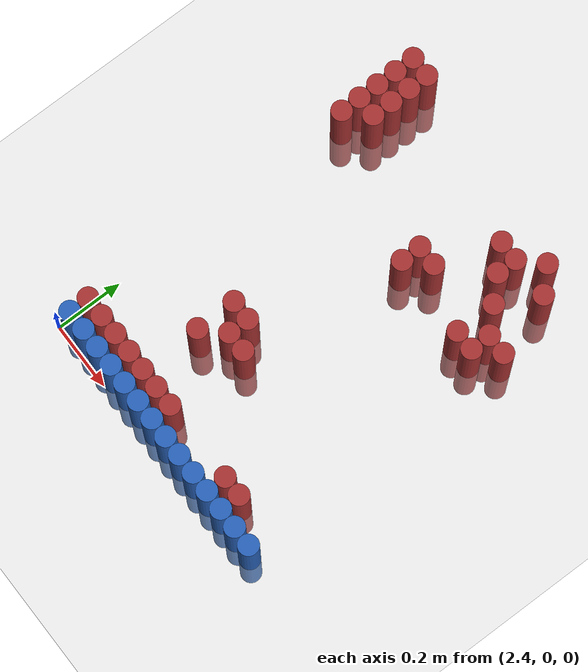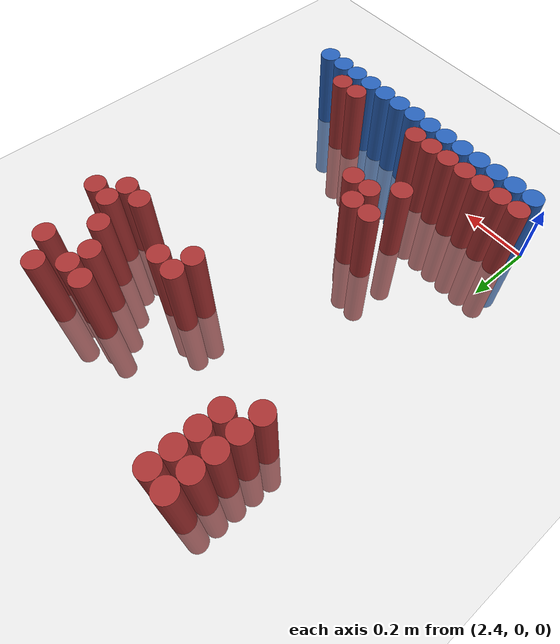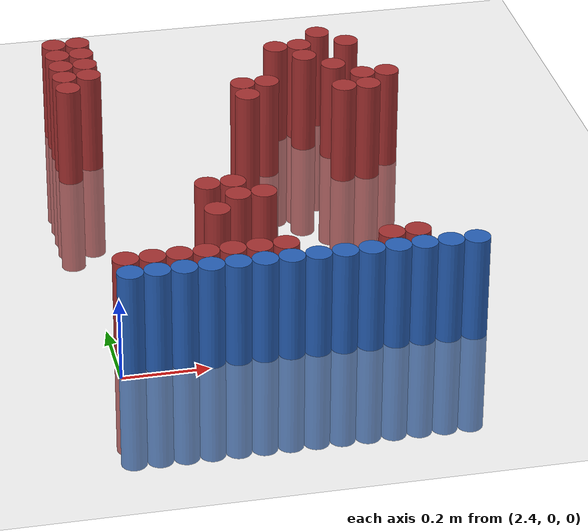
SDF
<sdf version="1.6">
 <world name="default">
  <model name="ground_plane">
   <static>1</static>
   <link name="link">
    <collision name="collision">
     <geometry><plane><normal>0 0 1</normal><size>100 100</size></plane></geometry>
     <surface><friction><ode><mu>100</mu><mu2>50</mu2></ode></friction></surface>
    </collision>
    <visual name="visual">
     <cast_shadows>0</cast_shadows>
     <geometry><plane><normal>0 0 1</normal><size>100 100</size></plane></geometry>
     <material>
      <script><uri>file://media/materials/scripts/gazebo.material</uri><name>Gazebo/Grey</name></script>
     </material>
    </visual>
   </link>
  </model>
  <model name="unit_cylinder_216">
   <static>1</static>
   <pose>2.430000 1.170000 0.000000 0.000000 0.000000 0.000000</pose>
   <link name="link">
    <inertial>
     <mass>1</mass>
     <inertia><ixx>0.145833</ixx><ixy>0</ixy><ixz>0</ixz><iyy>0.145833</iyy><iyz>0</iyz><izz>0.125</izz></inertia>
    </inertial>
    <collision name="collision">
     <geometry><cylinder><radius>0.030000</radius><length>0.5</length></cylinder></geometry>
    </collision>
    <visual name="visual">
     <geometry><cylinder><radius>0.030000</radius><length>0.5</length></cylinder></geometry>
     <material>
      <ambient>0.648000 0.192000 0.192000 1</ambient>
      <diffuse>0.648000 0.192000 0.192000 1</diffuse>
     </material>
     <material>
      <script><name>Gazebo/Grey</name><uri>file://media/materials/scripts/gazebo.material</uri></script>
     </material>
    </visual>
   </link>
  </model>
  <model name="unit_cylinder_217">
   <static>1</static>
   <pose>2.490000 1.170000 0.000000 0.000000 0.000000 0.000000</pose>
   <link name="link">
    <inertial>
     <mass>1</mass>
     <inertia><ixx>0.145833</ixx><ixy>0</ixy><ixz>0</ixz><iyy>0.145833</iyy><iyz>0</iyz><izz>0.125</izz></inertia>
    </inertial>
    <collision name="collision">
     <geometry><cylinder><radius>0.030000</radius><length>0.5</length></cylinder></geometry>
    </collision>
    <visual name="visual">
     <geometry><cylinder><radius>0.030000</radius><length>0.5</length></cylinder></geometry>
     <material>
      <ambient>0.648000 0.192000 0.192000 1</ambient>
      <diffuse>0.648000 0.192000 0.192000 1</diffuse>
     </material>
     <material>
      <script><name>Gazebo/Grey</name><uri>file://media/materials/scripts/gazebo.material</uri></script>
     </material>
    </visual>
   </link>
  </model>
  <model name="unit_cylinder_226">
   <static>1</static>
   <pose>2.430000 1.110000 0.000000 0.000000 0.000000 0.000000</pose>
   <link name="link">
    <inertial>
     <mass>1</mass>
     <inertia><ixx>0.145833</ixx><ixy>0</ixy><ixz>0</ixz><iyy>0.145833</iyy><iyz>0</iyz><izz>0.125</izz></inertia>
    </inertial>
    <collision name="collision">
     <geometry><cylinder><radius>0.030000</radius><length>0.5</length></cylinder></geometry>
    </collision>
    <visual name="visual">
     <geometry><cylinder><radius>0.030000</radius><length>0.5</length></cylinder></geometry>
     <material>
      <ambient>0.648000 0.192000 0.192000 1</ambient>
      <diffuse>0.648000 0.192000 0.192000 1</diffuse>
     </material>
     <material>
      <script><name>Gazebo/Grey</name><uri>file://media/materials/scripts/gazebo.material</uri></script>
     </material>
    </visual>
   </link>
  </model>
  <model name="unit_cylinder_227">
   <static>1</static>
   <pose>2.490000 1.110000 0.000000 0.000000 0.000000 0.000000</pose>
   <link name="link">
    <inertial>
     <mass>1</mass>
     <inertia><ixx>0.145833</ixx><ixy>0</ixy><ixz>0</ixz><iyy>0.145833</iyy><iyz>0</iyz><izz>0.125</izz></inertia>
    </inertial>
    <collision name="collision">
     <geometry><cylinder><radius>0.030000</radius><length>0.5</length></cylinder></geometry>
    </collision>
    <visual name="visual">
     <geometry><cylinder><radius>0.030000</radius><length>0.5</length></cylinder></geometry>
     <material>
      <ambient>0.648000 0.192000 0.192000 1</ambient>
      <diffuse>0.648000 0.192000 0.192000 1</diffuse>
     </material>
     <material>
      <script><name>Gazebo/Grey</name><uri>file://media/materials/scripts/gazebo.material</uri></script>
     </material>
    </visual>
   </link>
  </model>
  <model name="unit_cylinder_228">
   <static>1</static>
   <pose>3.090000 1.110000 0.000000 0.000000 0.000000 0.000000</pose>
   <link name="link">
    <inertial>
     <mass>1</mass>
     <inertia><ixx>0.145833</ixx><ixy>0</ixy><ixz>0</ixz><iyy>0.145833</iyy><iyz>0</iyz><izz>0.125</izz></inertia>
    </inertial>
    <collision name="collision">
     <geometry><cylinder><radius>0.030000</radius><length>0.5</length></cylinder></geometry>
    </collision>
    <visual name="visual">
     <geometry><cylinder><radius>0.030000</radius><length>0.5</length></cylinder></geometry>
     <material>
      <ambient>0.648000 0.192000 0.192000 1</ambient>
      <diffuse>0.648000 0.192000 0.192000 1</diffuse>
     </material>
     <material>
      <script><name>Gazebo/Grey</name><uri>file://media/materials/scripts/gazebo.material</uri></script>
     </material>
    </visual>
   </link>
  </model>
  <model name="unit_cylinder_231">
   <static>1</static>
   <pose>2.430000 1.050000 0.000000 0.000000 0.000000 0.000000</pose>
   <link name="link">
    <inertial>
     <mass>1</mass>
     <inertia><ixx>0.145833</ixx><ixy>0</ixy><ixz>0</ixz><iyy>0.145833</iyy><iyz>0</iyz><izz>0.125</izz></inertia>
    </inertial>
    <collision name="collision">
     <geometry><cylinder><radius>0.030000</radius><length>0.5</length></cylinder></geometry>
    </collision>
    <visual name="visual">
     <geometry><cylinder><radius>0.030000</radius><length>0.5</length></cylinder></geometry>
     <material>
      <ambient>0.648000 0.192000 0.192000 1</ambient>
      <diffuse>0.648000 0.192000 0.192000 1</diffuse>
     </material>
     <material>
      <script><name>Gazebo/Grey</name><uri>file://media/materials/scripts/gazebo.material</uri></script>
     </material>
    </visual>
   </link>
  </model>
  <model name="unit_cylinder_232">
   <static>1</static>
   <pose>2.490000 1.050000 0.000000 0.000000 0.000000 0.000000</pose>
   <link name="link">
    <inertial>
     <mass>1</mass>
     <inertia><ixx>0.145833</ixx><ixy>0</ixy><ixz>0</ixz><iyy>0.145833</iyy><iyz>0</iyz><izz>0.125</izz></inertia>
    </inertial>
    <collision name="collision">
     <geometry><cylinder><radius>0.030000</radius><length>0.5</length></cylinder></geometry>
    </collision>
    <visual name="visual">
     <geometry><cylinder><radius>0.030000</radius><length>0.5</length></cylinder></geometry>
     <material>
      <ambient>0.648000 0.192000 0.192000 1</ambient>
      <diffuse>0.648000 0.192000 0.192000 1</diffuse>
     </material>
     <material>
      <script><name>Gazebo/Grey</name><uri>file://media/materials/scripts/gazebo.material</uri></script>
     </material>
    </visual>
   </link>
  </model>
  <model name="unit_cylinder_233">
   <static>1</static>
   <pose>2.970000 1.050000 0.000000 0.000000 0.000000 0.000000</pose>
   <link name="link">
    <inertial>
     <mass>1</mass>
     <inertia><ixx>0.145833</ixx><ixy>0</ixy><ixz>0</ixz><iyy>0.145833</iyy><iyz>0</iyz><izz>0.125</izz></inertia>
    </inertial>
    <collision name="collision">
     <geometry><cylinder><radius>0.030000</radius><length>0.5</length></cylinder></geometry>
    </collision>
    <visual name="visual">
     <geometry><cylinder><radius>0.030000</radius><length>0.5</length></cylinder></geometry>
     <material>
      <ambient>0.648000 0.192000 0.192000 1</ambient>
      <diffuse>0.648000 0.192000 0.192000 1</diffuse>
     </material>
     <material>
      <script><name>Gazebo/Grey</name><uri>file://media/materials/scripts/gazebo.material</uri></script>
     </material>
    </visual>
   </link>
  </model>
  <model name="unit_cylinder_234">
   <static>1</static>
   <pose>3.030000 1.050000 0.000000 0.000000 0.000000 0.000000</pose>
   <link name="link">
    <inertial>
     <mass>1</mass>
     <inertia><ixx>0.145833</ixx><ixy>0</ixy><ixz>0</ixz><iyy>0.145833</iyy><iyz>0</iyz><izz>0.125</izz></inertia>
    </inertial>
    <collision name="collision">
     <geometry><cylinder><radius>0.030000</radius><length>0.5</length></cylinder></geometry>
    </collision>
    <visual name="visual">
     <geometry><cylinder><radius>0.030000</radius><length>0.5</length></cylinder></geometry>
     <material>
      <ambient>0.648000 0.192000 0.192000 1</ambient>
      <diffuse>0.648000 0.192000 0.192000 1</diffuse>
     </material>
     <material>
      <script><name>Gazebo/Grey</name><uri>file://media/materials/scripts/gazebo.material</uri></script>
     </material>
    </visual>
   </link>
  </model>
  <model name="unit_cylinder_235">
   <static>1</static>
   <pose>3.150000 1.050000 0.000000 0.000000 0.000000 0.000000</pose>
   <link name="link">
    <inertial>
     <mass>1</mass>
     <inertia><ixx>0.145833</ixx><ixy>0</ixy><ixz>0</ixz><iyy>0.145833</iyy><iyz>0</iyz><izz>0.125</izz></inertia>
    </inertial>
    <collision name="collision">
     <geometry><cylinder><radius>0.030000</radius><length>0.5</length></cylinder></geometry>
    </collision>
    <visual name="visual">
     <geometry><cylinder><radius>0.030000</radius><length>0.5</length></cylinder></geometry>
     <material>
      <ambient>0.648000 0.192000 0.192000 1</ambient>
      <diffuse>0.648000 0.192000 0.192000 1</diffuse>
     </material>
     <material>
      <script><name>Gazebo/Grey</name><uri>file://media/materials/scripts/gazebo.material</uri></script>
     </material>
    </visual>
   </link>
  </model>
  <model name="unit_cylinder_236">
   <static>1</static>
   <pose>2.430000 0.990000 0.000000 0.000000 0.000000 0.000000</pose>
   <link name="link">
    <inertial>
     <mass>1</mass>
     <inertia><ixx>0.145833</ixx><ixy>0</ixy><ixz>0</ixz><iyy>0.145833</iyy><iyz>0</iyz><izz>0.125</izz></inertia>
    </inertial>
    <collision name="collision">
     <geometry><cylinder><radius>0.030000</radius><length>0.5</length></cylinder></geometry>
    </collision>
    <visual name="visual">
     <geometry><cylinder><radius>0.030000</radius><length>0.5</length></cylinder></geometry>
     <material>
      <ambient>0.648000 0.192000 0.192000 1</ambient>
      <diffuse>0.648000 0.192000 0.192000 1</diffuse>
     </material>
     <material>
      <script><name>Gazebo/Grey</name><uri>file://media/materials/scripts/gazebo.material</uri></script>
     </material>
    </visual>
   </link>
  </model>
  <model name="unit_cylinder_237">
   <static>1</static>
   <pose>2.490000 0.990000 0.000000 0.000000 0.000000 0.000000</pose>
   <link name="link">
    <inertial>
     <mass>1</mass>
     <inertia><ixx>0.145833</ixx><ixy>0</ixy><ixz>0</ixz><iyy>0.145833</iyy><iyz>0</iyz><izz>0.125</izz></inertia>
    </inertial>
    <collision name="collision">
     <geometry><cylinder><radius>0.030000</radius><length>0.5</length></cylinder></geometry>
    </collision>
    <visual name="visual">
     <geometry><cylinder><radius>0.030000</radius><length>0.5</length></cylinder></geometry>
     <material>
      <ambient>0.648000 0.192000 0.192000 1</ambient>
      <diffuse>0.648000 0.192000 0.192000 1</diffuse>
     </material>
     <material>
      <script><name>Gazebo/Grey</name><uri>file://media/materials/scripts/gazebo.material</uri></script>
     </material>
    </visual>
   </link>
  </model>
  <model name="unit_cylinder_238">
   <static>1</static>
   <pose>3.030000 0.990000 0.000000 0.000000 0.000000 0.000000</pose>
   <link name="link">
    <inertial>
     <mass>1</mass>
     <inertia><ixx>0.145833</ixx><ixy>0</ixy><ixz>0</ixz><iyy>0.145833</iyy><iyz>0</iyz><izz>0.125</izz></inertia>
    </inertial>
    <collision name="collision">
     <geometry><cylinder><radius>0.030000</radius><length>0.5</length></cylinder></geometry>
    </collision>
    <visual name="visual">
     <geometry><cylinder><radius>0.030000</radius><length>0.5</length></cylinder></geometry>
     <material>
      <ambient>0.648000 0.192000 0.192000 1</ambient>
      <diffuse>0.648000 0.192000 0.192000 1</diffuse>
     </material>
     <material>
      <script><name>Gazebo/Grey</name><uri>file://media/materials/scripts/gazebo.material</uri></script>
     </material>
    </visual>
   </link>
  </model>
  <model name="unit_cylinder_243">
   <static>1</static>
   <pose>2.430000 0.930000 0.000000 0.000000 0.000000 0.000000</pose>
   <link name="link">
    <inertial>
     <mass>1</mass>
     <inertia><ixx>0.145833</ixx><ixy>0</ixy><ixz>0</ixz><iyy>0.145833</iyy><iyz>0</iyz><izz>0.125</izz></inertia>
    </inertial>
    <collision name="collision">
     <geometry><cylinder><radius>0.030000</radius><length>0.5</length></cylinder></geometry>
    </collision>
    <visual name="visual">
     <geometry><cylinder><radius>0.030000</radius><length>0.5</length></cylinder></geometry>
     <material>
      <ambient>0.648000 0.192000 0.192000 1</ambient>
      <diffuse>0.648000 0.192000 0.192000 1</diffuse>
     </material>
     <material>
      <script><name>Gazebo/Grey</name><uri>file://media/materials/scripts/gazebo.material</uri></script>
     </material>
    </visual>
   </link>
  </model>
  <model name="unit_cylinder_244">
   <static>1</static>
   <pose>3.090000 0.930000 0.000000 0.000000 0.000000 0.000000</pose>
   <link name="link">
    <inertial>
     <mass>1</mass>
     <inertia><ixx>0.145833</ixx><ixy>0</ixy><ixz>0</ixz><iyy>0.145833</iyy><iyz>0</iyz><izz>0.125</izz></inertia>
    </inertial>
    <collision name="collision">
     <geometry><cylinder><radius>0.030000</radius><length>0.5</length></cylinder></geometry>
    </collision>
    <visual name="visual">
     <geometry><cylinder><radius>0.030000</radius><length>0.5</length></cylinder></geometry>
     <material>
      <ambient>0.648000 0.192000 0.192000 1</ambient>
      <diffuse>0.648000 0.192000 0.192000 1</diffuse>
     </material>
     <material>
      <script><name>Gazebo/Grey</name><uri>file://media/materials/scripts/gazebo.material</uri></script>
     </material>
    </visual>
   </link>
  </model>
  <model name="unit_cylinder_252">
   <static>1</static>
   <pose>2.850000 0.870000 0.000000 0.000000 0.000000 0.000000</pose>
   <link name="link">
    <inertial>
     <mass>1</mass>
     <inertia><ixx>0.145833</ixx><ixy>0</ixy><ixz>0</ixz><iyy>0.145833</iyy><iyz>0</iyz><izz>0.125</izz></inertia>
    </inertial>
    <collision name="collision">
     <geometry><cylinder><radius>0.030000</radius><length>0.5</length></cylinder></geometry>
    </collision>
    <visual name="visual">
     <geometry><cylinder><radius>0.030000</radius><length>0.5</length></cylinder></geometry>
     <material>
      <ambient>0.648000 0.192000 0.192000 1</ambient>
      <diffuse>0.648000 0.192000 0.192000 1</diffuse>
     </material>
     <material>
      <script><name>Gazebo/Grey</name><uri>file://media/materials/scripts/gazebo.material</uri></script>
     </material>
    </visual>
   </link>
  </model>
  <model name="unit_cylinder_253">
   <static>1</static>
   <pose>2.910000 0.870000 0.000000 0.000000 0.000000 0.000000</pose>
   <link name="link">
    <inertial>
     <mass>1</mass>
     <inertia><ixx>0.145833</ixx><ixy>0</ixy><ixz>0</ixz><iyy>0.145833</iyy><iyz>0</iyz><izz>0.125</izz></inertia>
    </inertial>
    <collision name="collision">
     <geometry><cylinder><radius>0.030000</radius><length>0.5</length></cylinder></geometry>
    </collision>
    <visual name="visual">
     <geometry><cylinder><radius>0.030000</radius><length>0.5</length></cylinder></geometry>
     <material>
      <ambient>0.648000 0.192000 0.192000 1</ambient>
      <diffuse>0.648000 0.192000 0.192000 1</diffuse>
     </material>
     <material>
      <script><name>Gazebo/Grey</name><uri>file://media/materials/scripts/gazebo.material</uri></script>
     </material>
    </visual>
   </link>
  </model>
  <model name="unit_cylinder_254">
   <static>1</static>
   <pose>3.150000 0.870000 0.000000 0.000000 0.000000 0.000000</pose>
   <link name="link">
    <inertial>
     <mass>1</mass>
     <inertia><ixx>0.145833</ixx><ixy>0</ixy><ixz>0</ixz><iyy>0.145833</iyy><iyz>0</iyz><izz>0.125</izz></inertia>
    </inertial>
    <collision name="collision">
     <geometry><cylinder><radius>0.030000</radius><length>0.5</length></cylinder></geometry>
    </collision>
    <visual name="visual">
     <geometry><cylinder><radius>0.030000</radius><length>0.5</length></cylinder></geometry>
     <material>
      <ambient>0.648000 0.192000 0.192000 1</ambient>
      <diffuse>0.648000 0.192000 0.192000 1</diffuse>
     </material>
     <material>
      <script><name>Gazebo/Grey</name><uri>file://media/materials/scripts/gazebo.material</uri></script>
     </material>
    </visual>
   </link>
  </model>
  <model name="unit_cylinder_255">
   <static>1</static>
   <pose>3.210000 0.870000 0.000000 0.000000 0.000000 0.000000</pose>
   <link name="link">
    <inertial>
     <mass>1</mass>
     <inertia><ixx>0.145833</ixx><ixy>0</ixy><ixz>0</ixz><iyy>0.145833</iyy><iyz>0</iyz><izz>0.125</izz></inertia>
    </inertial>
    <collision name="collision">
     <geometry><cylinder><radius>0.030000</radius><length>0.5</length></cylinder></geometry>
    </collision>
    <visual name="visual">
     <geometry><cylinder><radius>0.030000</radius><length>0.5</length></cylinder></geometry>
     <material>
      <ambient>0.648000 0.192000 0.192000 1</ambient>
      <diffuse>0.648000 0.192000 0.192000 1</diffuse>
     </material>
     <material>
      <script><name>Gazebo/Grey</name><uri>file://media/materials/scripts/gazebo.material</uri></script>
     </material>
    </visual>
   </link>
  </model>
  <model name="unit_cylinder_261">
   <static>1</static>
   <pose>2.850000 0.810000 0.000000 0.000000 0.000000 0.000000</pose>
   <link name="link">
    <inertial>
     <mass>1</mass>
     <inertia><ixx>0.145833</ixx><ixy>0</ixy><ixz>0</ixz><iyy>0.145833</iyy><iyz>0</iyz><izz>0.125</izz></inertia>
    </inertial>
    <collision name="collision">
     <geometry><cylinder><radius>0.030000</radius><length>0.5</length></cylinder></geometry>
    </collision>
    <visual name="visual">
     <geometry><cylinder><radius>0.030000</radius><length>0.5</length></cylinder></geometry>
     <material>
      <ambient>0.648000 0.192000 0.192000 1</ambient>
      <diffuse>0.648000 0.192000 0.192000 1</diffuse>
     </material>
     <material>
      <script><name>Gazebo/Grey</name><uri>file://media/materials/scripts/gazebo.material</uri></script>
     </material>
    </visual>
   </link>
  </model>
  <model name="unit_cylinder_262">
   <static>1</static>
   <pose>3.090000 0.810000 0.000000 0.000000 0.000000 0.000000</pose>
   <link name="link">
    <inertial>
     <mass>1</mass>
     <inertia><ixx>0.145833</ixx><ixy>0</ixy><ixz>0</ixz><iyy>0.145833</iyy><iyz>0</iyz><izz>0.125</izz></inertia>
    </inertial>
    <collision name="collision">
     <geometry><cylinder><radius>0.030000</radius><length>0.5</length></cylinder></geometry>
    </collision>
    <visual name="visual">
     <geometry><cylinder><radius>0.030000</radius><length>0.5</length></cylinder></geometry>
     <material>
      <ambient>0.648000 0.192000 0.192000 1</ambient>
      <diffuse>0.648000 0.192000 0.192000 1</diffuse>
     </material>
     <material>
      <script><name>Gazebo/Grey</name><uri>file://media/materials/scripts/gazebo.material</uri></script>
     </material>
    </visual>
   </link>
  </model>
  <model name="unit_cylinder_263">
   <static>1</static>
   <pose>3.150000 0.810000 0.000000 0.000000 0.000000 0.000000</pose>
   <link name="link">
    <inertial>
     <mass>1</mass>
     <inertia><ixx>0.145833</ixx><ixy>0</ixy><ixz>0</ixz><iyy>0.145833</iyy><iyz>0</iyz><izz>0.125</izz></inertia>
    </inertial>
    <collision name="collision">
     <geometry><cylinder><radius>0.030000</radius><length>0.5</length></cylinder></geometry>
    </collision>
    <visual name="visual">
     <geometry><cylinder><radius>0.030000</radius><length>0.5</length></cylinder></geometry>
     <material>
      <ambient>0.648000 0.192000 0.192000 1</ambient>
      <diffuse>0.648000 0.192000 0.192000 1</diffuse>
     </material>
     <material>
      <script><name>Gazebo/Grey</name><uri>file://media/materials/scripts/gazebo.material</uri></script>
     </material>
    </visual>
   </link>
  </model>
  <model name="unit_cylinder_269">
   <static>1</static>
   <pose>2.670000 0.390000 0.000000 0.000000 0.000000 0.000000</pose>
   <link name="link">
    <inertial>
     <mass>1</mass>
     <inertia><ixx>0.145833</ixx><ixy>0</ixy><ixz>0</ixz><iyy>0.145833</iyy><iyz>0</iyz><izz>0.125</izz></inertia>
    </inertial>
    <collision name="collision">
     <geometry><cylinder><radius>0.030000</radius><length>0.5</length></cylinder></geometry>
    </collision>
    <visual name="visual">
     <geometry><cylinder><radius>0.030000</radius><length>0.5</length></cylinder></geometry>
     <material>
      <ambient>0.648000 0.192000 0.192000 1</ambient>
      <diffuse>0.648000 0.192000 0.192000 1</diffuse>
     </material>
     <material>
      <script><name>Gazebo/Grey</name><uri>file://media/materials/scripts/gazebo.material</uri></script>
     </material>
    </visual>
   </link>
  </model>
  <model name="unit_cylinder_270">
   <static>1</static>
   <pose>2.730000 0.390000 0.000000 0.000000 0.000000 0.000000</pose>
   <link name="link">
    <inertial>
     <mass>1</mass>
     <inertia><ixx>0.145833</ixx><ixy>0</ixy><ixz>0</ixz><iyy>0.145833</iyy><iyz>0</iyz><izz>0.125</izz></inertia>
    </inertial>
    <collision name="collision">
     <geometry><cylinder><radius>0.030000</radius><length>0.5</length></cylinder></geometry>
    </collision>
    <visual name="visual">
     <geometry><cylinder><radius>0.030000</radius><length>0.5</length></cylinder></geometry>
     <material>
      <ambient>0.648000 0.192000 0.192000 1</ambient>
      <diffuse>0.648000 0.192000 0.192000 1</diffuse>
     </material>
     <material>
      <script><name>Gazebo/Grey</name><uri>file://media/materials/scripts/gazebo.material</uri></script>
     </material>
    </visual>
   </link>
  </model>
  <model name="unit_cylinder_278">
   <static>1</static>
   <pose>2.730000 0.330000 0.000000 0.000000 0.000000 0.000000</pose>
   <link name="link">
    <inertial>
     <mass>1</mass>
     <inertia><ixx>0.145833</ixx><ixy>0</ixy><ixz>0</ixz><iyy>0.145833</iyy><iyz>0</iyz><izz>0.125</izz></inertia>
    </inertial>
    <collision name="collision">
     <geometry><cylinder><radius>0.030000</radius><length>0.5</length></cylinder></geometry>
    </collision>
    <visual name="visual">
     <geometry><cylinder><radius>0.030000</radius><length>0.5</length></cylinder></geometry>
     <material>
      <ambient>0.648000 0.192000 0.192000 1</ambient>
      <diffuse>0.648000 0.192000 0.192000 1</diffuse>
     </material>
     <material>
      <script><name>Gazebo/Grey</name><uri>file://media/materials/scripts/gazebo.material</uri></script>
     </material>
    </visual>
   </link>
  </model>
  <model name="unit_cylinder_279">
   <static>1</static>
   <pose>2.790000 0.330000 0.000000 0.000000 0.000000 0.000000</pose>
   <link name="link">
    <inertial>
     <mass>1</mass>
     <inertia><ixx>0.145833</ixx><ixy>0</ixy><ixz>0</ixz><iyy>0.145833</iyy><iyz>0</iyz><izz>0.125</izz></inertia>
    </inertial>
    <collision name="collision">
     <geometry><cylinder><radius>0.030000</radius><length>0.5</length></cylinder></geometry>
    </collision>
    <visual name="visual">
     <geometry><cylinder><radius>0.030000</radius><length>0.5</length></cylinder></geometry>
     <material>
      <ambient>0.648000 0.192000 0.192000 1</ambient>
      <diffuse>0.648000 0.192000 0.192000 1</diffuse>
     </material>
     <material>
      <script><name>Gazebo/Grey</name><uri>file://media/materials/scripts/gazebo.material</uri></script>
     </material>
    </visual>
   </link>
  </model>
  <model name="unit_cylinder_288">
   <static>1</static>
   <pose>2.670000 0.270000 0.000000 0.000000 0.000000 0.000000</pose>
   <link name="link">
    <inertial>
     <mass>1</mass>
     <inertia><ixx>0.145833</ixx><ixy>0</ixy><ixz>0</ixz><iyy>0.145833</iyy><iyz>0</iyz><izz>0.125</izz></inertia>
    </inertial>
    <collision name="collision">
     <geometry><cylinder><radius>0.030000</radius><length>0.5</length></cylinder></geometry>
    </collision>
    <visual name="visual">
     <geometry><cylinder><radius>0.030000</radius><length>0.5</length></cylinder></geometry>
     <material>
      <ambient>0.648000 0.192000 0.192000 1</ambient>
      <diffuse>0.648000 0.192000 0.192000 1</diffuse>
     </material>
     <material>
      <script><name>Gazebo/Grey</name><uri>file://media/materials/scripts/gazebo.material</uri></script>
     </material>
    </visual>
   </link>
  </model>
  <model name="unit_cylinder_310">
   <static>1</static>
   <pose>2.430000 0.090000 0.000000 0.000000 0.000000 0.000000</pose>
   <link name="link">
    <inertial>
     <mass>1</mass>
     <inertia><ixx>0.145833</ixx><ixy>0</ixy><ixz>0</ixz><iyy>0.145833</iyy><iyz>0</iyz><izz>0.125</izz></inertia>
    </inertial>
    <collision name="collision">
     <geometry><cylinder><radius>0.030000</radius><length>0.5</length></cylinder></geometry>
    </collision>
    <visual name="visual">
     <geometry><cylinder><radius>0.030000</radius><length>0.5</length></cylinder></geometry>
     <material>
      <ambient>0.648000 0.192000 0.192000 1</ambient>
      <diffuse>0.648000 0.192000 0.192000 1</diffuse>
     </material>
     <material>
      <script><name>Gazebo/Grey</name><uri>file://media/materials/scripts/gazebo.material</uri></script>
     </material>
    </visual>
   </link>
  </model>
  <model name="unit_cylinder_311">
   <static>1</static>
   <pose>2.490000 0.090000 0.000000 0.000000 0.000000 0.000000</pose>
   <link name="link">
    <inertial>
     <mass>1</mass>
     <inertia><ixx>0.145833</ixx><ixy>0</ixy><ixz>0</ixz><iyy>0.145833</iyy><iyz>0</iyz><izz>0.125</izz></inertia>
    </inertial>
    <collision name="collision">
     <geometry><cylinder><radius>0.030000</radius><length>0.5</length></cylinder></geometry>
    </collision>
    <visual name="visual">
     <geometry><cylinder><radius>0.030000</radius><length>0.5</length></cylinder></geometry>
     <material>
      <ambient>0.648000 0.192000 0.192000 1</ambient>
      <diffuse>0.648000 0.192000 0.192000 1</diffuse>
     </material>
     <material>
      <script><name>Gazebo/Grey</name><uri>file://media/materials/scripts/gazebo.material</uri></script>
     </material>
    </visual>
   </link>
  </model>
  <model name="unit_cylinder_312">
   <static>1</static>
   <pose>2.550000 0.090000 0.000000 0.000000 0.000000 0.000000</pose>
   <link name="link">
    <inertial>
     <mass>1</mass>
     <inertia><ixx>0.145833</ixx><ixy>0</ixy><ixz>0</ixz><iyy>0.145833</iyy><iyz>0</iyz><izz>0.125</izz></inertia>
    </inertial>
    <collision name="collision">
     <geometry><cylinder><radius>0.030000</radius><length>0.5</length></cylinder></geometry>
    </collision>
    <visual name="visual">
     <geometry><cylinder><radius>0.030000</radius><length>0.5</length></cylinder></geometry>
     <material>
      <ambient>0.648000 0.192000 0.192000 1</ambient>
      <diffuse>0.648000 0.192000 0.192000 1</diffuse>
     </material>
     <material>
      <script><name>Gazebo/Grey</name><uri>file://media/materials/scripts/gazebo.material</uri></script>
     </material>
    </visual>
   </link>
  </model>
  <model name="unit_cylinder_313">
   <static>1</static>
   <pose>2.610000 0.090000 0.000000 0.000000 0.000000 0.000000</pose>
   <link name="link">
    <inertial>
     <mass>1</mass>
     <inertia><ixx>0.145833</ixx><ixy>0</ixy><ixz>0</ixz><iyy>0.145833</iyy><iyz>0</iyz><izz>0.125</izz></inertia>
    </inertial>
    <collision name="collision">
     <geometry><cylinder><radius>0.030000</radius><length>0.5</length></cylinder></geometry>
    </collision>
    <visual name="visual">
     <geometry><cylinder><radius>0.030000</radius><length>0.5</length></cylinder></geometry>
     <material>
      <ambient>0.648000 0.192000 0.192000 1</ambient>
      <diffuse>0.648000 0.192000 0.192000 1</diffuse>
     </material>
     <material>
      <script><name>Gazebo/Grey</name><uri>file://media/materials/scripts/gazebo.material</uri></script>
     </material>
    </visual>
   </link>
  </model>
  <model name="unit_cylinder_314">
   <static>1</static>
   <pose>2.670000 0.090000 0.000000 0.000000 0.000000 0.000000</pose>
   <link name="link">
    <inertial>
     <mass>1</mass>
     <inertia><ixx>0.145833</ixx><ixy>0</ixy><ixz>0</ixz><iyy>0.145833</iyy><iyz>0</iyz><izz>0.125</izz></inertia>
    </inertial>
    <collision name="collision">
     <geometry><cylinder><radius>0.030000</radius><length>0.5</length></cylinder></geometry>
    </collision>
    <visual name="visual">
     <geometry><cylinder><radius>0.030000</radius><length>0.5</length></cylinder></geometry>
     <material>
      <ambient>0.648000 0.192000 0.192000 1</ambient>
      <diffuse>0.648000 0.192000 0.192000 1</diffuse>
     </material>
     <material>
      <script><name>Gazebo/Grey</name><uri>file://media/materials/scripts/gazebo.material</uri></script>
     </material>
    </visual>
   </link>
  </model>
  <model name="unit_cylinder_315">
   <static>1</static>
   <pose>2.730000 0.090000 0.000000 0.000000 0.000000 0.000000</pose>
   <link name="link">
    <inertial>
     <mass>1</mass>
     <inertia><ixx>0.145833</ixx><ixy>0</ixy><ixz>0</ixz><iyy>0.145833</iyy><iyz>0</iyz><izz>0.125</izz></inertia>
    </inertial>
    <collision name="collision">
     <geometry><cylinder><radius>0.030000</radius><length>0.5</length></cylinder></geometry>
    </collision>
    <visual name="visual">
     <geometry><cylinder><radius>0.030000</radius><length>0.5</length></cylinder></geometry>
     <material>
      <ambient>0.648000 0.192000 0.192000 1</ambient>
      <diffuse>0.648000 0.192000 0.192000 1</diffuse>
     </material>
     <material>
      <script><name>Gazebo/Grey</name><uri>file://media/materials/scripts/gazebo.material</uri></script>
     </material>
    </visual>
   </link>
  </model>
  <model name="unit_cylinder_316">
   <static>1</static>
   <pose>2.790000 0.090000 0.000000 0.000000 0.000000 0.000000</pose>
   <link name="link">
    <inertial>
     <mass>1</mass>
     <inertia><ixx>0.145833</ixx><ixy>0</ixy><ixz>0</ixz><iyy>0.145833</iyy><iyz>0</iyz><izz>0.125</izz></inertia>
    </inertial>
    <collision name="collision">
     <geometry><cylinder><radius>0.030000</radius><length>0.5</length></cylinder></geometry>
    </collision>
    <visual name="visual">
     <geometry><cylinder><radius>0.030000</radius><length>0.5</length></cylinder></geometry>
     <material>
      <ambient>0.648000 0.192000 0.192000 1</ambient>
      <diffuse>0.648000 0.192000 0.192000 1</diffuse>
     </material>
     <material>
      <script><name>Gazebo/Grey</name><uri>file://media/materials/scripts/gazebo.material</uri></script>
     </material>
    </visual>
   </link>
  </model>
  <model name="unit_cylinder_317">
   <static>1</static>
   <pose>3.030000 0.090000 0.000000 0.000000 0.000000 0.000000</pose>
   <link name="link">
    <inertial>
     <mass>1</mass>
     <inertia><ixx>0.145833</ixx><ixy>0</ixy><ixz>0</ixz><iyy>0.145833</iyy><iyz>0</iyz><izz>0.125</izz></inertia>
    </inertial>
    <collision name="collision">
     <geometry><cylinder><radius>0.030000</radius><length>0.5</length></cylinder></geometry>
    </collision>
    <visual name="visual">
     <geometry><cylinder><radius>0.030000</radius><length>0.5</length></cylinder></geometry>
     <material>
      <ambient>0.648000 0.192000 0.192000 1</ambient>
      <diffuse>0.648000 0.192000 0.192000 1</diffuse>
     </material>
     <material>
      <script><name>Gazebo/Grey</name><uri>file://media/materials/scripts/gazebo.material</uri></script>
     </material>
    </visual>
   </link>
  </model>
  <model name="unit_cylinder_318">
   <static>1</static>
   <pose>3.090000 0.090000 0.000000 0.000000 0.000000 0.000000</pose>
   <link name="link">
    <inertial>
     <mass>1</mass>
     <inertia><ixx>0.145833</ixx><ixy>0</ixy><ixz>0</ixz><iyy>0.145833</iyy><iyz>0</iyz><izz>0.125</izz></inertia>
    </inertial>
    <collision name="collision">
     <geometry><cylinder><radius>0.030000</radius><length>0.5</length></cylinder></geometry>
    </collision>
    <visual name="visual">
     <geometry><cylinder><radius>0.030000</radius><length>0.5</length></cylinder></geometry>
     <material>
      <ambient>0.648000 0.192000 0.192000 1</ambient>
      <diffuse>0.648000 0.192000 0.192000 1</diffuse>
     </material>
     <material>
      <script><name>Gazebo/Grey</name><uri>file://media/materials/scripts/gazebo.material</uri></script>
     </material>
    </visual>
   </link>
  </model>
  <model name="unit_cylinder_328">
   <static>1</static>
   <pose>2.430000 0.030000 0.000000 0.000000 0.000000 0.000000</pose>
   <link name="link">
    <inertial>
     <mass>1</mass>
     <inertia><ixx>0.145833</ixx><ixy>0</ixy><ixz>0</ixz><iyy>0.145833</iyy><iyz>0</iyz><izz>0.125</izz></inertia>
    </inertial>
    <collision name="collision">
     <geometry><cylinder><radius>0.030000</radius><length>0.5</length></cylinder></geometry>
    </collision>
    <visual name="visual">
     <geometry><cylinder><radius>0.030000</radius><length>0.5</length></cylinder></geometry>
     <material>
      <ambient>0.152000 0.379000 0.720000 1</ambient>
      <diffuse>0.152000 0.379000 0.720000 1</diffuse>
     </material>
     <material>
      <script><name>Gazebo/Grey</name><uri>file://media/materials/scripts/gazebo.material</uri></script>
     </material>
    </visual>
   </link>
  </model>
  <model name="unit_cylinder_329">
   <static>1</static>
   <pose>2.490000 0.030000 0.000000 0.000000 0.000000 0.000000</pose>
   <link name="link">
    <inertial>
     <mass>1</mass>
     <inertia><ixx>0.145833</ixx><ixy>0</ixy><ixz>0</ixz><iyy>0.145833</iyy><iyz>0</iyz><izz>0.125</izz></inertia>
    </inertial>
    <collision name="collision">
     <geometry><cylinder><radius>0.030000</radius><length>0.5</length></cylinder></geometry>
    </collision>
    <visual name="visual">
     <geometry><cylinder><radius>0.030000</radius><length>0.5</length></cylinder></geometry>
     <material>
      <ambient>0.152000 0.379000 0.720000 1</ambient>
      <diffuse>0.152000 0.379000 0.720000 1</diffuse>
     </material>
     <material>
      <script><name>Gazebo/Grey</name><uri>file://media/materials/scripts/gazebo.material</uri></script>
     </material>
    </visual>
   </link>
  </model>
  <model name="unit_cylinder_330">
   <static>1</static>
   <pose>2.550000 0.030000 0.000000 0.000000 0.000000 0.000000</pose>
   <link name="link">
    <inertial>
     <mass>1</mass>
     <inertia><ixx>0.145833</ixx><ixy>0</ixy><ixz>0</ixz><iyy>0.145833</iyy><iyz>0</iyz><izz>0.125</izz></inertia>
    </inertial>
    <collision name="collision">
     <geometry><cylinder><radius>0.030000</radius><length>0.5</length></cylinder></geometry>
    </collision>
    <visual name="visual">
     <geometry><cylinder><radius>0.030000</radius><length>0.5</length></cylinder></geometry>
     <material>
      <ambient>0.152000 0.379000 0.720000 1</ambient>
      <diffuse>0.152000 0.379000 0.720000 1</diffuse>
     </material>
     <material>
      <script><name>Gazebo/Grey</name><uri>file://media/materials/scripts/gazebo.material</uri></script>
     </material>
    </visual>
   </link>
  </model>
  <model name="unit_cylinder_331">
   <static>1</static>
   <pose>2.610000 0.030000 0.000000 0.000000 0.000000 0.000000</pose>
   <link name="link">
    <inertial>
     <mass>1</mass>
     <inertia><ixx>0.145833</ixx><ixy>0</ixy><ixz>0</ixz><iyy>0.145833</iyy><iyz>0</iyz><izz>0.125</izz></inertia>
    </inertial>
    <collision name="collision">
     <geometry><cylinder><radius>0.030000</radius><length>0.5</length></cylinder></geometry>
    </collision>
    <visual name="visual">
     <geometry><cylinder><radius>0.030000</radius><length>0.5</length></cylinder></geometry>
     <material>
      <ambient>0.152000 0.379000 0.720000 1</ambient>
      <diffuse>0.152000 0.379000 0.720000 1</diffuse>
     </material>
     <material>
      <script><name>Gazebo/Grey</name><uri>file://media/materials/scripts/gazebo.material</uri></script>
     </material>
    </visual>
   </link>
  </model>
  <model name="unit_cylinder_332">
   <static>1</static>
   <pose>2.670000 0.030000 0.000000 0.000000 0.000000 0.000000</pose>
   <link name="link">
    <inertial>
     <mass>1</mass>
     <inertia><ixx>0.145833</ixx><ixy>0</ixy><ixz>0</ixz><iyy>0.145833</iyy><iyz>0</iyz><izz>0.125</izz></inertia>
    </inertial>
    <collision name="collision">
     <geometry><cylinder><radius>0.030000</radius><length>0.5</length></cylinder></geometry>
    </collision>
    <visual name="visual">
     <geometry><cylinder><radius>0.030000</radius><length>0.5</length></cylinder></geometry>
     <material>
      <ambient>0.152000 0.379000 0.720000 1</ambient>
      <diffuse>0.152000 0.379000 0.720000 1</diffuse>
     </material>
     <material>
      <script><name>Gazebo/Grey</name><uri>file://media/materials/scripts/gazebo.material</uri></script>
     </material>
    </visual>
   </link>
  </model>
  <model name="unit_cylinder_333">
   <static>1</static>
   <pose>2.730000 0.030000 0.000000 0.000000 0.000000 0.000000</pose>
   <link name="link">
    <inertial>
     <mass>1</mass>
     <inertia><ixx>0.145833</ixx><ixy>0</ixy><ixz>0</ixz><iyy>0.145833</iyy><iyz>0</iyz><izz>0.125</izz></inertia>
    </inertial>
    <collision name="collision">
     <geometry><cylinder><radius>0.030000</radius><length>0.5</length></cylinder></geometry>
    </collision>
    <visual name="visual">
     <geometry><cylinder><radius>0.030000</radius><length>0.5</length></cylinder></geometry>
     <material>
      <ambient>0.152000 0.379000 0.720000 1</ambient>
      <diffuse>0.152000 0.379000 0.720000 1</diffuse>
     </material>
     <material>
      <script><name>Gazebo/Grey</name><uri>file://media/materials/scripts/gazebo.material</uri></script>
     </material>
    </visual>
   </link>
  </model>
  <model name="unit_cylinder_334">
   <static>1</static>
   <pose>2.790000 0.030000 0.000000 0.000000 0.000000 0.000000</pose>
   <link name="link">
    <inertial>
     <mass>1</mass>
     <inertia><ixx>0.145833</ixx><ixy>0</ixy><ixz>0</ixz><iyy>0.145833</iyy><iyz>0</iyz><izz>0.125</izz></inertia>
    </inertial>
    <collision name="collision">
     <geometry><cylinder><radius>0.030000</radius><length>0.5</length></cylinder></geometry>
    </collision>
    <visual name="visual">
     <geometry><cylinder><radius>0.030000</radius><length>0.5</length></cylinder></geometry>
     <material>
      <ambient>0.152000 0.379000 0.720000 1</ambient>
      <diffuse>0.152000 0.379000 0.720000 1</diffuse>
     </material>
     <material>
      <script><name>Gazebo/Grey</name><uri>file://media/materials/scripts/gazebo.material</uri></script>
     </material>
    </visual>
   </link>
  </model>
  <model name="unit_cylinder_335">
   <static>1</static>
   <pose>2.850000 0.030000 0.000000 0.000000 0.000000 0.000000</pose>
   <link name="link">
    <inertial>
     <mass>1</mass>
     <inertia><ixx>0.145833</ixx><ixy>0</ixy><ixz>0</ixz><iyy>0.145833</iyy><iyz>0</iyz><izz>0.125</izz></inertia>
    </inertial>
    <collision name="collision">
     <geometry><cylinder><radius>0.030000</radius><length>0.5</length></cylinder></geometry>
    </collision>
    <visual name="visual">
     <geometry><cylinder><radius>0.030000</radius><length>0.5</length></cylinder></geometry>
     <material>
      <ambient>0.152000 0.379000 0.720000 1</ambient>
      <diffuse>0.152000 0.379000 0.720000 1</diffuse>
     </material>
     <material>
      <script><name>Gazebo/Grey</name><uri>file://media/materials/scripts/gazebo.material</uri></script>
     </material>
    </visual>
   </link>
  </model>
  <model name="unit_cylinder_336">
   <static>1</static>
   <pose>2.910000 0.030000 0.000000 0.000000 0.000000 0.000000</pose>
   <link name="link">
    <inertial>
     <mass>1</mass>
     <inertia><ixx>0.145833</ixx><ixy>0</ixy><ixz>0</ixz><iyy>0.145833</iyy><iyz>0</iyz><izz>0.125</izz></inertia>
    </inertial>
    <collision name="collision">
     <geometry><cylinder><radius>0.030000</radius><length>0.5</length></cylinder></geometry>
    </collision>
    <visual name="visual">
     <geometry><cylinder><radius>0.030000</radius><length>0.5</length></cylinder></geometry>
     <material>
      <ambient>0.152000 0.379000 0.720000 1</ambient>
      <diffuse>0.152000 0.379000 0.720000 1</diffuse>
     </material>
     <material>
      <script><name>Gazebo/Grey</name><uri>file://media/materials/scripts/gazebo.material</uri></script>
     </material>
    </visual>
   </link>
  </model>
  <model name="unit_cylinder_337">
   <static>1</static>
   <pose>2.970000 0.030000 0.000000 0.000000 0.000000 0.000000</pose>
   <link name="link">
    <inertial>
     <mass>1</mass>
     <inertia><ixx>0.145833</ixx><ixy>0</ixy><ixz>0</ixz><iyy>0.145833</iyy><iyz>0</iyz><izz>0.125</izz></inertia>
    </inertial>
    <collision name="collision">
     <geometry><cylinder><radius>0.030000</radius><length>0.5</length></cylinder></geometry>
    </collision>
    <visual name="visual">
     <geometry><cylinder><radius>0.030000</radius><length>0.5</length></cylinder></geometry>
     <material>
      <ambient>0.152000 0.379000 0.720000 1</ambient>
      <diffuse>0.152000 0.379000 0.720000 1</diffuse>
     </material>
     <material>
      <script><name>Gazebo/Grey</name><uri>file://media/materials/scripts/gazebo.material</uri></script>
     </material>
    </visual>
   </link>
  </model>
  <model name="unit_cylinder_338">
   <static>1</static>
   <pose>3.030000 0.030000 0.000000 0.000000 0.000000 0.000000</pose>
   <link name="link">
    <inertial>
     <mass>1</mass>
     <inertia><ixx>0.145833</ixx><ixy>0</ixy><ixz>0</ixz><iyy>0.145833</iyy><iyz>0</iyz><izz>0.125</izz></inertia>
    </inertial>
    <collision name="collision">
     <geometry><cylinder><radius>0.030000</radius><length>0.5</length></cylinder></geometry>
    </collision>
    <visual name="visual">
     <geometry><cylinder><radius>0.030000</radius><length>0.5</length></cylinder></geometry>
     <material>
      <ambient>0.152000 0.379000 0.720000 1</ambient>
      <diffuse>0.152000 0.379000 0.720000 1</diffuse>
     </material>
     <material>
      <script><name>Gazebo/Grey</name><uri>file://media/materials/scripts/gazebo.material</uri></script>
     </material>
    </visual>
   </link>
  </model>
  <model name="unit_cylinder_339">
   <static>1</static>
   <pose>3.090000 0.030000 0.000000 0.000000 0.000000 0.000000</pose>
   <link name="link">
    <inertial>
     <mass>1</mass>
     <inertia><ixx>0.145833</ixx><ixy>0</ixy><ixz>0</ixz><iyy>0.145833</iyy><iyz>0</iyz><izz>0.125</izz></inertia>
    </inertial>
    <collision name="collision">
     <geometry><cylinder><radius>0.030000</radius><length>0.5</length></cylinder></geometry>
    </collision>
    <visual name="visual">
     <geometry><cylinder><radius>0.030000</radius><length>0.5</length></cylinder></geometry>
     <material>
      <ambient>0.152000 0.379000 0.720000 1</ambient>
      <diffuse>0.152000 0.379000 0.720000 1</diffuse>
     </material>
     <material>
      <script><name>Gazebo/Grey</name><uri>file://media/materials/scripts/gazebo.material</uri></script>
     </material>
    </visual>
   </link>
  </model>
  <model name="unit_cylinder_340">
   <static>1</static>
   <pose>3.150000 0.030000 0.000000 0.000000 0.000000 0.000000</pose>
   <link name="link">
    <inertial>
     <mass>1</mass>
     <inertia><ixx>0.145833</ixx><ixy>0</ixy><ixz>0</ixz><iyy>0.145833</iyy><iyz>0</iyz><izz>0.125</izz></inertia>
    </inertial>
    <collision name="collision">
     <geometry><cylinder><radius>0.030000</radius><length>0.5</length></cylinder></geometry>
    </collision>
    <visual name="visual">
     <geometry><cylinder><radius>0.030000</radius><length>0.5</length></cylinder></geometry>
     <material>
      <ambient>0.152000 0.379000 0.720000 1</ambient>
      <diffuse>0.152000 0.379000 0.720000 1</diffuse>
     </material>
     <material>
      <script><name>Gazebo/Grey</name><uri>file://media/materials/scripts/gazebo.material</uri></script>
     </material>
    </visual>
   </link>
  </model>
  <model name="unit_cylinder_341">
   <static>1</static>
   <pose>3.210000 0.030000 0.000000 0.000000 0.000000 0.000000</pose>
   <link name="link">
    <inertial>
     <mass>1</mass>
     <inertia><ixx>0.145833</ixx><ixy>0</ixy><ixz>0</ixz><iyy>0.145833</iyy><iyz>0</iyz><izz>0.125</izz></inertia>
    </inertial>
    <collision name="collision">
     <geometry><cylinder><radius>0.030000</radius><length>0.5</length></cylinder></geometry>
    </collision>
    <visual name="visual">
     <geometry><cylinder><radius>0.030000</radius><length>0.5</length></cylinder></geometry>
     <material>
      <ambient>0.152000 0.379000 0.720000 1</ambient>
      <diffuse>0.152000 0.379000 0.720000 1</diffuse>
     </material>
     <material>
      <script><name>Gazebo/Grey</name><uri>file://media/materials/scripts/gazebo.material</uri></script>
     </material>
    </visual>
   </link>
  </model>
 </world>
</sdf>
